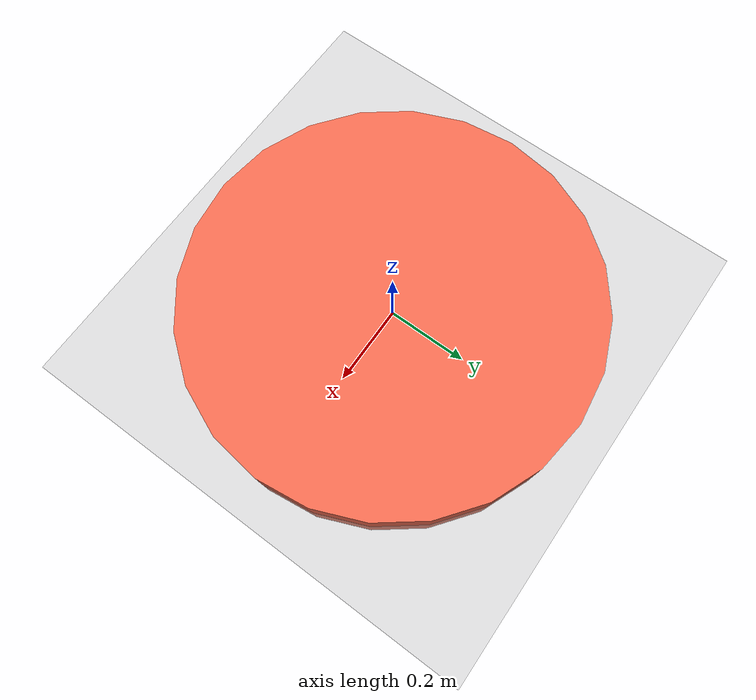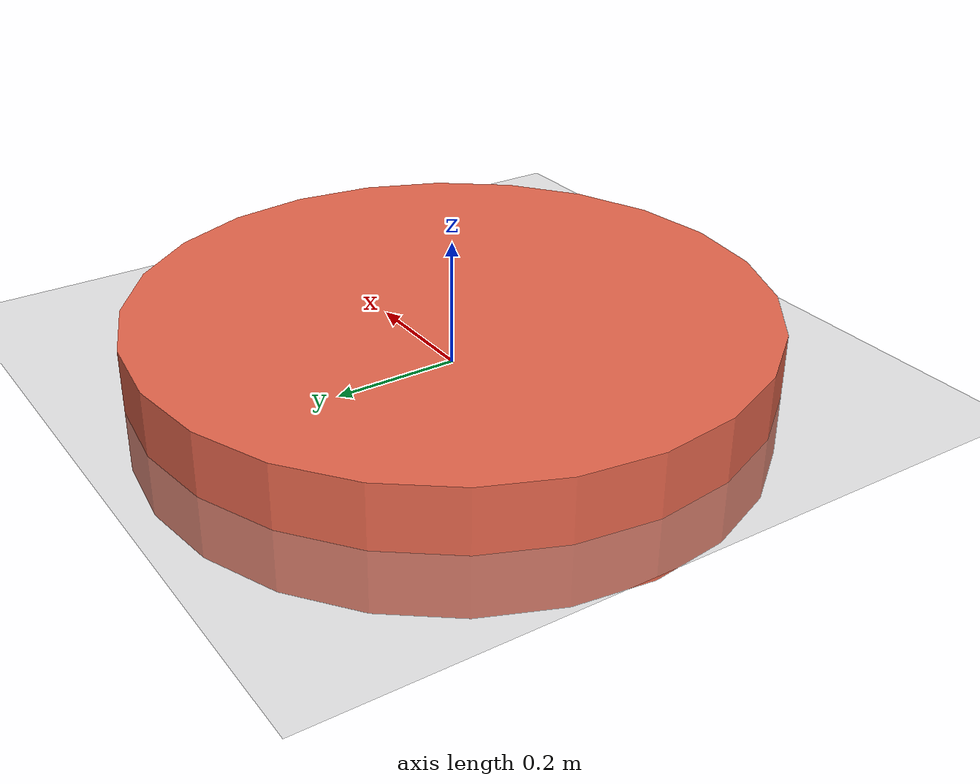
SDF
<sdf version="1.9">
  <world name="default">

    <plugin
      filename="gz-sim-user-commands-system"
      name="gz::sim::systems::UserCommands">
    </plugin>
    <plugin
      filename="gz-sim-scene-broadcaster-system"
      name="gz::sim::systems::SceneBroadcaster">
    </plugin>
    <!-- Sun Light Source -->
    <light name="sun" type="directional">
      <pose>0 0 10 0 0 0</pose>
      <diffuse>0.8 0.8 0.8 1</diffuse>
      <specular>0.8 0.8 0.8 1</specular>
      <attenuation>
        <range>1000</range>
        <constant>0.8</constant>
        <linear>0.02</linear>
        <quadratic>0.01</quadratic>
      </attenuation>
      <direction>0 0 -1</direction> <!-- Sun pointing downwards -->
    </light>

    <!-- Ground Plane Model -->
    <model name="ground_plane">
      <static>true</static>
      <link name="link">
        <visual name="visual">
          <geometry>
            <plane>
              <normal>0 0 1</normal>
              <size>100 100</size>
            </plane>
          </geometry>
          <material>
            <ambient>0.6 0.6 0.6 1.0</ambient>
            <diffuse>0.6 0.6 0.6 1.0</diffuse>
          </material>
        </visual>
        <collision name="collision">
          <geometry>
            <plane>
              <normal>0 0 1</normal>
              <size>100 100</size>
            </plane>
          </geometry>
        </collision>
      </link>
    </model>

    <!-- Your robot model -->
    <model name="four_diff_drive">
      <static>false</static>
      <link name="base_link">
        <visual name="base_visual">
          <geometry>
            <cylinder>
              <radius>0.5</radius>
              <length>0.2</length>
            </cylinder>
          </geometry>
          <material>
            <ambient>0.9 0.4 0.3 1.0</ambient>
            <diffuse>0.9 0.4 0.3 1.0</diffuse>
          </material>
        </visual>
        <collision name="base_collision">
          <geometry>
            <cylinder>
              <radius>0.5</radius>
              <length>0.2</length>
            </cylinder>
          </geometry>
        </collision>
      </link>

      <!-- Front Left Wheel -->
      <link name="fl_wheel">
        <visual name="fl_wheel_visual">
          <geometry>
            <cylinder>
              <radius>0.1</radius>
              <length>0.05</length>
            </cylinder>
          </geometry>
          <material>
            <ambient>0.3 0.3 0.3 1.0</ambient>
            <diffuse>0.3 0.3 0.3 1.0</diffuse>
          </material>
        </visual>
        <collision name="fl_wheel_collision">
          <geometry>
            <cylinder>
              <radius>0.1</radius>
              <length>0.05</length>
            </cylinder>
          </geometry>
        </collision>
      </link>

      <!-- Front Right Wheel -->
      <link name="fr_wheel">
        <visual name="fr_wheel_visual">
          <geometry>
            <cylinder>
              <radius>0.1</radius>
              <length>0.05</length>
            </cylinder>
          </geometry>
          <material>
            <ambient>0.3 0.3 0.3 1.0</ambient>
            <diffuse>0.3 0.3 0.3 1.0</diffuse>
          </material>
        </visual>
        <collision name="fr_wheel_collision">
          <geometry>
            <cylinder>
              <radius>0.1</radius>
              <length>0.05</length>
            </cylinder>
          </geometry>
        </collision>
      </link>

      <!-- Rear Left Wheel -->
      <link name="rl_wheel">
        <visual name="rl_wheel_visual">
          <geometry>
            <cylinder>
              <radius>0.1</radius>
              <length>0.05</length>
            </cylinder>
          </geometry>
          <material>
            <ambient>0.3 0.3 0.3 1.0</ambient>
            <diffuse>0.3 0.3 0.3 1.0</diffuse>
          </material>
        </visual>
        <collision name="rl_wheel_collision">
          <geometry>
            <cylinder>
              <radius>0.1</radius>
              <length>0.05</length>
            </cylinder>
          </geometry>
        </collision>
      </link>

      <!-- Rear Right Wheel -->
      <link name="rr_wheel">
        <visual name="rr_wheel_visual">
          <geometry>
            <cylinder>
              <radius>0.1</radius>
              <length>0.05</length>
            </cylinder>
          </geometry>
          <material>
            <ambient>0.3 0.3 0.3 1.0</ambient>
            <diffuse>0.3 0.3 0.3 1.0</diffuse>
          </material>
        </visual>
        <collision name="rr_wheel_collision">
          <geometry>
            <cylinder>
              <radius>0.1</radius>
              <length>0.05</length>
            </cylinder>
          </geometry>
        </collision>
      </link>

      <!-- Joints -->
      <joint name="fl_wheel_joint" type="revolute">
        <parent>base_link</parent>
        <child>fl_wheel</child>
        <pose>0.5 0.25 0 0 0 0</pose> <!-- Positioning Front Left Wheel -->
        <axis>
          <xyz>0 0 1</xyz> <!-- Rotate about Z-axis -->
        </axis>
        <dynamics>
          <damping>0.1</damping>
        </dynamics>
      </joint>

      <joint name="fr_wheel_joint" type="revolute">
        <parent>base_link</parent>
        <child>fr_wheel</child>
        <pose>0.5 -0.25 0 0 0 0</pose> <!-- Positioning Front Right Wheel -->
        <axis>
          <xyz>0 0 1</xyz> <!-- Rotate about Z-axis -->
        </axis>
        <dynamics>
          <damping>0.1</damping>
        </dynamics>
      </joint>

      <joint name="rl_wheel_joint" type="revolute">
        <parent>base_link</parent>
        <child>rl_wheel</child>
        <pose>-0.5 0.25 0 0 0 0</pose> <!-- Positioning Rear Left Wheel -->
        <axis>
          <xyz>0 0 1</xyz> <!-- Rotate about Z-axis -->
        </axis>
        <dynamics>
          <damping>0.1</damping>
        </dynamics>
      </joint>

      <joint name="rr_wheel_joint" type="revolute">
        <parent>base_link</parent>
        <child>rr_wheel</child>
        <pose>-0.5 -0.25 0 0 0 0</pose> <!-- Positioning Rear Right Wheel -->
        <axis>
          <xyz>0 0 1</xyz> <!-- Rotate about Z-axis -->
        </axis>
        <dynamics>
          <damping>0.1</damping>
        </dynamics>
      </joint>

    </model>
  </world>
</sdf>
